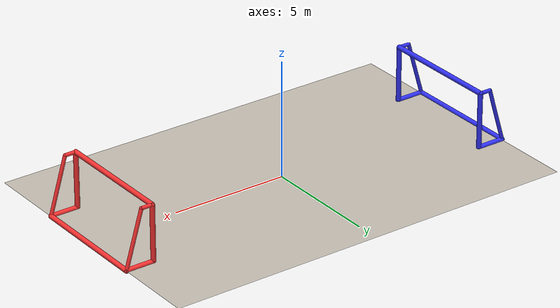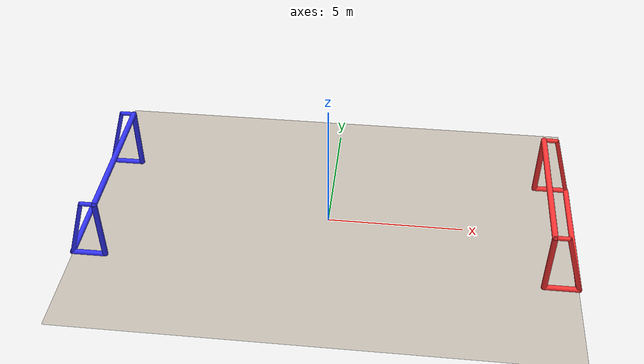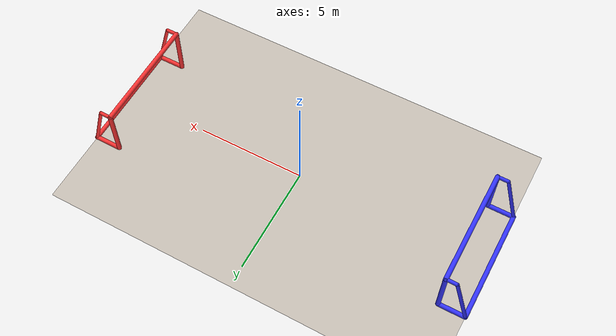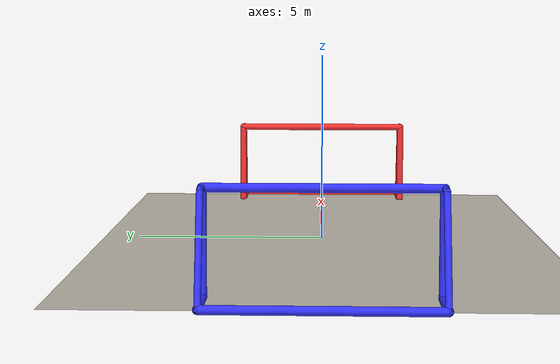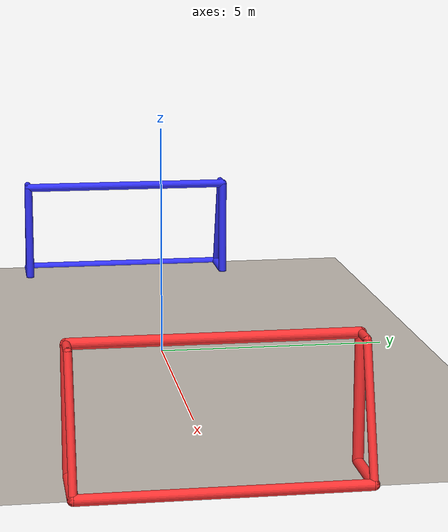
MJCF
<mujoco model="pitch">
  <compiler boundmass="1.0000000000000001e-05" boundinertia="9.9999999999999994e-12" coordinate="local" angle="radian" eulerseq="xyz"/>
  <option timestep="0.002" cone="elliptic" noslip_iterations="5" noslip_tolerance="0"/>
  <visual>
    <quality shadowsize="8192"/>
    <headlight ambient="0.29999999999999999 0.29999999999999999 0.29999999999999999" diffuse="0.59999999999999998 0.59999999999999998 0.59999999999999998" specular="0 0 0"/>
    <map znear="0.11111111111111112" zfar="45"/>
    <scale forcewidth="0.01" contactwidth="0.059999999999999998" contactheight="0.01" jointwidth="0.01" framelength="0.29999999999999999" framewidth="0.01"/>
  </visual>
  <statistic extent="0.90000000000000002" center="0 0 0.90000000000000002"/>
  <default>
    <default class="/"/>
    <default class="home_goal/"/>
    <default class="away_goal/"/>
    <default class="field/"/>
  </default>
  <asset>
    <texture name="skybox" type="skybox" builtin="gradient" rgb1="0.69999999999999996 0.90000000000000002 0.90000000000000002" rgb2="0.029999999999999999 0.089999999999999997 0.27000000000000002" width="400" height="400"/>
    <texture name="fieldplane" type="2d" file="b780517667d461514e5c43c26c5c5f33b43d6cb1.png"/>
    <material name="fieldplane" class="/" texture="fieldplane"/>
  </asset>
  <worldbody>
    <camera name="top_down" class="/" fovy="11.898698081434549" pos="0 0 95" zaxis="0 0 1"/>
    <light name="//unnamed_light_0" class="/" pos="-9 -6 5" dir="9 6 -10" cutoff="60"/>
    <light name="//unnamed_light_1" class="/" pos="-9 6 5" dir="9 -6 -10" cutoff="60"/>
    <light name="//unnamed_light_2" class="/" pos="9 -6 5" dir="-9 6 -10" cutoff="60"/>
    <light name="//unnamed_light_3" class="/" pos="9 6 5" dir="-9 -6 -10" cutoff="60"/>
    <geom name="ground" class="/" type="plane" size="9 6 0.089999999999999997" material="fieldplane"/>
    <body name="home_goal/">
      <site name="home_goal/detection_zone" class="home_goal/" type="box" group="4" rgba="0.20000000000000001 0.20000000000000001 1 0.5" size="0.59999999999999998 2.6000000000000001 1.2" pos="-8.4000000000000004 0 1.2"/>
      <site name="home_goal/lower" class="home_goal/" group="4" rgba="0.20000000000000001 0.20000000000000001 1 0.5" size="0.050000000000000003" pos="-9 -2.6000000000000001 0"/>
      <site name="home_goal/mid" class="home_goal/" group="4" rgba="0.20000000000000001 0.20000000000000001 1 0.5" size="0.050000000000000003" pos="-8.4000000000000004 0 1.2"/>
      <site name="home_goal/upper" class="home_goal/" group="4" rgba="0.20000000000000001 0.20000000000000001 1 0.5" size="0.050000000000000003" pos="-7.8000000000000007 2.6000000000000001 2.3999999999999999"/>
      <geom name="home_goal/right_post" class="home_goal/" type="capsule" size="0.10266666666666668" rgba="0.20000000000000001 0.20000000000000001 1 1" fromto="-7.8000000000000007 -2.6000000000000001 0 -7.8000000000000007 -2.6000000000000001 2.3999999999999999"/>
      <geom name="home_goal/left_post" class="home_goal/" type="capsule" size="0.10266666666666668" rgba="0.20000000000000001 0.20000000000000001 1 1" fromto="-7.8000000000000007 2.6000000000000001 0 -7.8000000000000007 2.6000000000000001 2.3999999999999999"/>
      <geom name="home_goal/top_post" class="home_goal/" type="capsule" size="0.10369333333333335" rgba="0.20000000000000001 0.20000000000000001 1 1" fromto="-7.8000000000000007 -2.6000000000000001 2.3999999999999999 -7.8000000000000007 2.6000000000000001 2.3999999999999999"/>
      <geom name="home_goal/right_base" class="home_goal/" type="capsule" size="0.10266666666666668" rgba="0.20000000000000001 0.20000000000000001 1 1" fromto="-7.8000000000000007 -2.6000000000000001 0 -9 -2.6000000000000001 0"/>
      <geom name="home_goal/left_base" class="home_goal/" type="capsule" size="0.10266666666666668" rgba="0.20000000000000001 0.20000000000000001 1 1" fromto="-7.8000000000000007 2.6000000000000001 0 -9 2.6000000000000001 0"/>
      <geom name="home_goal/back_base" class="home_goal/" type="capsule" size="0.10266666666666668" rgba="0.20000000000000001 0.20000000000000001 1 1" fromto="-9 -2.6000000000000001 0 -9 2.6000000000000001 0"/>
      <geom name="home_goal/right_support" class="home_goal/" type="capsule" size="0.077000000000000013" rgba="0.20000000000000001 0.20000000000000001 1 1" fromto="-9 -2.6000000000000001 0 -8.2800000000000011 -2.6000000000000001 2.3999999999999999"/>
      <geom name="home_goal/right_top_support" class="home_goal/" type="capsule" size="0.077770000000000006" rgba="0.20000000000000001 0.20000000000000001 1 1" fromto="-8.2800000000000011 -2.6000000000000001 2.3999999999999999 -7.8000000000000007 -2.6000000000000001 2.3999999999999999"/>
      <geom name="home_goal/left_support" class="home_goal/" type="capsule" size="0.077000000000000013" rgba="0.20000000000000001 0.20000000000000001 1 1" fromto="-9 2.6000000000000001 0 -8.2800000000000011 2.6000000000000001 2.3999999999999999"/>
      <geom name="home_goal/left_top_support" class="home_goal/" type="capsule" size="0.077770000000000006" rgba="0.20000000000000001 0.20000000000000001 1 1" fromto="-8.2800000000000011 2.6000000000000001 2.3999999999999999 -7.8000000000000007 2.6000000000000001 2.3999999999999999"/>
    </body>
    <body name="away_goal/">
      <site name="away_goal/detection_zone" class="away_goal/" type="box" group="4" rgba="1 0.20000000000000001 0.20000000000000001 0.5" size="0.59999999999999998 2.6000000000000001 1.2" pos="8.4000000000000004 0 1.2"/>
      <site name="away_goal/lower" class="away_goal/" group="4" rgba="1 0.20000000000000001 0.20000000000000001 0.5" size="0.050000000000000003" pos="7.8000000000000007 -2.6000000000000001 0"/>
      <site name="away_goal/mid" class="away_goal/" group="4" rgba="1 0.20000000000000001 0.20000000000000001 0.5" size="0.050000000000000003" pos="8.4000000000000004 0 1.2"/>
      <site name="away_goal/upper" class="away_goal/" group="4" rgba="1 0.20000000000000001 0.20000000000000001 0.5" size="0.050000000000000003" pos="9 2.6000000000000001 2.3999999999999999"/>
      <geom name="away_goal/right_post" class="away_goal/" type="capsule" size="0.10266666666666668" rgba="1 0.20000000000000001 0.20000000000000001 1" fromto="7.8000000000000007 2.6000000000000001 0 7.8000000000000007 2.6000000000000001 2.3999999999999999"/>
      <geom name="away_goal/left_post" class="away_goal/" type="capsule" size="0.10266666666666668" rgba="1 0.20000000000000001 0.20000000000000001 1" fromto="7.8000000000000007 -2.6000000000000001 0 7.8000000000000007 -2.6000000000000001 2.3999999999999999"/>
      <geom name="away_goal/top_post" class="away_goal/" type="capsule" size="0.10369333333333335" rgba="1 0.20000000000000001 0.20000000000000001 1" fromto="7.8000000000000007 2.6000000000000001 2.3999999999999999 7.8000000000000007 -2.6000000000000001 2.3999999999999999"/>
      <geom name="away_goal/right_base" class="away_goal/" type="capsule" size="0.10266666666666668" rgba="1 0.20000000000000001 0.20000000000000001 1" fromto="7.8000000000000007 2.6000000000000001 0 9 2.6000000000000001 0"/>
      <geom name="away_goal/left_base" class="away_goal/" type="capsule" size="0.10266666666666668" rgba="1 0.20000000000000001 0.20000000000000001 1" fromto="7.8000000000000007 -2.6000000000000001 0 9 -2.6000000000000001 0"/>
      <geom name="away_goal/back_base" class="away_goal/" type="capsule" size="0.10266666666666668" rgba="1 0.20000000000000001 0.20000000000000001 1" fromto="9 2.6000000000000001 0 9 -2.6000000000000001 0"/>
      <geom name="away_goal/right_support" class="away_goal/" type="capsule" size="0.077000000000000013" rgba="1 0.20000000000000001 0.20000000000000001 1" fromto="9 2.6000000000000001 0 8.2800000000000011 2.6000000000000001 2.3999999999999999"/>
      <geom name="away_goal/right_top_support" class="away_goal/" type="capsule" size="0.077770000000000006" rgba="1 0.20000000000000001 0.20000000000000001 1" fromto="8.2800000000000011 2.6000000000000001 2.3999999999999999 7.8000000000000007 2.6000000000000001 2.3999999999999999"/>
      <geom name="away_goal/left_support" class="away_goal/" type="capsule" size="0.077000000000000013" rgba="1 0.20000000000000001 0.20000000000000001 1" fromto="9 -2.6000000000000001 0 8.2800000000000011 -2.6000000000000001 2.3999999999999999"/>
      <geom name="away_goal/left_top_support" class="away_goal/" type="capsule" size="0.077770000000000006" rgba="1 0.20000000000000001 0.20000000000000001 1" fromto="8.2800000000000011 -2.6000000000000001 2.3999999999999999 7.8000000000000007 -2.6000000000000001 2.3999999999999999"/>
    </body>
    <body name="field/">
      <site name="field/detection_zone" class="field/" type="box" group="4" rgba="1 1 1 1" size="7.7999999999999998 4.7999999999999998 0.01" pos="0 0 0"/>
      <site name="field/lower" class="field/" group="4" rgba="1 1 1 1" size="0.050000000000000003" pos="-7.7999999999999998 -4.7999999999999998 0"/>
      <site name="field/mid" class="field/" group="4" rgba="1 1 1 1" size="0.050000000000000003" pos="0 0 0"/>
      <site name="field/upper" class="field/" group="4" rgba="1 1 1 1" size="0.050000000000000003" pos="7.7999999999999998 4.7999999999999998 0"/>
    </body>
    <geom name="//unnamed_geom_1" class="/" type="plane" contype="0" conaffinity="0" size="0.59999999999999998 0.59999999999999998 0.089999999999999997" rgba="255 0 0 0" pos="-8.4000000000000004 -5.4000000000000004 0"/>
    <geom name="//unnamed_geom_2" class="/" type="plane" contype="0" conaffinity="0" size="0.59999999999999998 4.7999999999999998 0.089999999999999997" rgba="255 0 0 0" pos="-8.4000000000000004 0 0"/>
    <geom name="//unnamed_geom_3" class="/" type="plane" contype="0" conaffinity="0" size="0.59999999999999998 0.59999999999999998 0.089999999999999997" rgba="255 0 0 0" pos="-8.4000000000000004 5.4000000000000004 0"/>
    <geom name="//unnamed_geom_4" class="/" type="plane" contype="0" conaffinity="0" size="7.7999999999999998 0.59999999999999998 0.089999999999999997" rgba="255 0 0 0" pos="0 -5.4000000000000004 0"/>
    <geom name="//unnamed_geom_5" class="/" type="plane" contype="0" conaffinity="0" size="7.7999999999999998 0.59999999999999998 0.089999999999999997" rgba="255 0 0 0" pos="0 5.4000000000000004 0"/>
    <geom name="//unnamed_geom_6" class="/" type="plane" contype="0" conaffinity="0" size="0.59999999999999998 0.59999999999999998 0.089999999999999997" rgba="255 0 0 0" pos="8.4000000000000004 -5.4000000000000004 0"/>
    <geom name="//unnamed_geom_7" class="/" type="plane" contype="0" conaffinity="0" size="0.59999999999999998 4.7999999999999998 0.089999999999999997" rgba="255 0 0 0" pos="8.4000000000000004 0 0"/>
    <geom name="//unnamed_geom_8" class="/" type="plane" contype="0" conaffinity="0" size="0.59999999999999998 0.59999999999999998 0.089999999999999997" rgba="255 0 0 0" pos="8.4000000000000004 5.4000000000000004 0"/>
  </worldbody>
  <sensor>
    <framepos name="home_goal/home_goal_lower" objtype="site" objname="home_goal/lower"/>
    <framepos name="home_goal/home_goal_mid" objtype="site" objname="home_goal/mid"/>
    <framepos name="home_goal/home_goal_upper" objtype="site" objname="home_goal/upper"/>
    <framepos name="away_goal/away_goal_lower" objtype="site" objname="away_goal/lower"/>
    <framepos name="away_goal/away_goal_mid" objtype="site" objname="away_goal/mid"/>
    <framepos name="away_goal/away_goal_upper" objtype="site" objname="away_goal/upper"/>
    <framepos name="field/field_lower" objtype="site" objname="field/lower"/>
    <framepos name="field/field_mid" objtype="site" objname="field/mid"/>
    <framepos name="field/field_upper" objtype="site" objname="field/upper"/>
  </sensor>
</mujoco>
